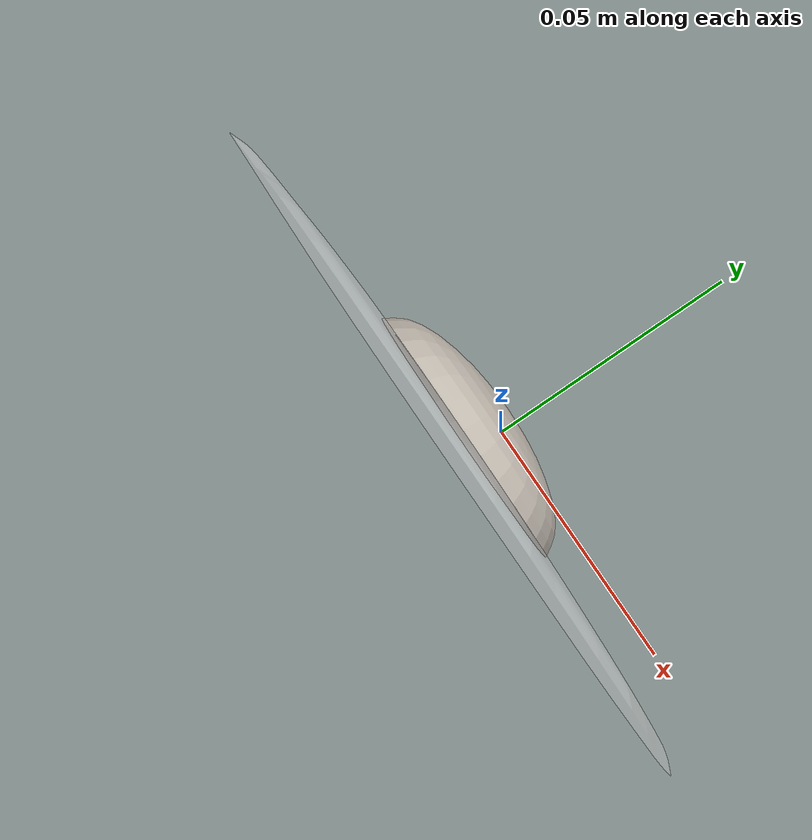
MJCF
<mujoco model="Egg_Cracked_21">
  <compiler autolimits="true" boundmass="0.01" angle="radian"/>
  <default>
    <default class="/">
      <default class="__VISUAL_MJT__">
        <geom contype="0" conaffinity="0" group="0"/>
      </default>
      <default class="__STRUCTURAL_MJT__">
        <geom contype="8" conaffinity="15" group="4" friction="0.90000000000000002 0.90000000000000002 0.001" solref="0.025000000000000001 1" solimp="0.998 0.998 0.001"/>
      </default>
      <default class="__DYNAMIC_MJT__">
        <geom contype="1" conaffinity="15" group="4" friction="0.90000000000000002 0.90000000000000002 0.001" solref="0.025000000000000001 1" solimp="0.998 0.998 0.001"/>
      </default>
    </default>
  </default>
  <asset>
    <texture name="Fried_Egg_White_Uncooked_Mat" type="2d" file="Fried_Egg_AlbedoTransparency.png"/>
    <material name="material_Fried_Egg_White_Uncooked_Mat" class="/" texture="Fried_Egg_White_Uncooked_Mat" specular="0.5" shininess="0.5" rgba="1 1 1 0.5"/>
    <texture name="Fried_Egg_Yolk_Mat" type="2d" file="Fried_Egg_AlbedoTransparency.png"/>
    <material name="material_Fried_Egg_Yolk_Mat" class="/" texture="Fried_Egg_Yolk_Mat" specular="0.5" shininess="0.5" rgba="1 1 1 1"/>
    <mesh name="Egg_Cracked_21_fried_egg_20_0" class="/" file="Egg_Cracked_21_fried_egg_20/Egg_Cracked_21_fried_egg_20_0.obj" scale="1 1 1"/>
    <mesh name="Egg_Cracked_21_fried_egg_20_1" class="/" file="Egg_Cracked_21_fried_egg_20/Egg_Cracked_21_fried_egg_20_1.obj" scale="1 1 1"/>
  </asset>
  <worldbody>
    <body name="Egg_Cracked_21">
      <joint name="Egg_Cracked_21_free" class="/" type="free" pos="0 0 0" axis="0 0 1" stiffness="0" range="0 0" armature="0" damping="0.10000000000000001" frictionloss="0"/>
      <body name="Egg_Cracked_21_fried_egg_20" pos="-0.0013500000000000001 -0.01023 -0.0082500000000000004" quat="1 0 0 0">
        <geom name="Egg_Cracked_21_fried_egg_20_0" class="__VISUAL_MJT__" type="mesh" material="material_Fried_Egg_White_Uncooked_Mat" shellinertia="false" mesh="Egg_Cracked_21_fried_egg_20_0"/>
        <geom name="Egg_Cracked_21_fried_egg_20_1" class="__VISUAL_MJT__" type="mesh" material="material_Fried_Egg_Yolk_Mat" shellinertia="false" mesh="Egg_Cracked_21_fried_egg_20_1"/>
        <geom name="Egg_Cracked_21_PrimitiveCollider_0" class="__DYNAMIC_MJT__" type="box" size="0.072957418859004974 0.010231256484985352 0.072016656398773193" rgba="0 1 0 1" pos="-0.0013547912240028381 0.010231256484985352 0.008254706859588623" quat="1 0 0 0"/>
      </body>
    </body>
  </worldbody>
</mujoco>
